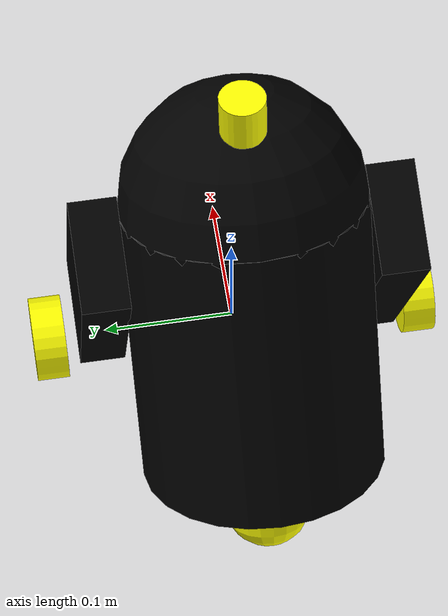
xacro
<?xml version="1.0"?>
<robot xmlns:xacro="http://www.ros.org/wiki/xacro"  name="R6_D9">

    <xacro:arg name="use_ros2_control" default="true"/>
    <xacro:arg name="sim_mode" default="false"/>

    <xacro:include filename="robot_core.xacro" />

    <xacro:if value="$(arg use_ros2_control)">
        <xacro:include filename="ros2_control.xacro" />
    </xacro:if>
    <xacro:unless value="$(arg use_ros2_control)">
        <xacro:include filename="gazebo_control.xacro" />
    </xacro:unless>
    <xacro:include filename="lidar.xacro" />

</robot>

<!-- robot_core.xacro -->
<robot xmlns:xacro="http://www.ros.org/wiki/xacro" >

    <xacro:include filename="inertial_macros.xacro"/>

    <material name="yellow">
        <color rgba="1 1 0 1"/>
    </material>

    <material name="black">
        <color rgba="0 0 0 1"/>
    </material>

    <link name="base_link">

    </link>

    <!-- Chassis Joint -->
    <joint name="chassis_joint" type="fixed">
        <parent link="base_link"/>
        <child link="chassis"/>
        <origin xyz="-0.075 0.0 0.222" rpy="0.0 0.5 0.0"/>
    </joint>

    <!-- Chassis Link -->
    <link name="chassis">
        <visual>
            <origin xyz="0.0 0.0 -0.07"/>
            <geometry>
                <cylinder radius="0.09" length=".222"/>
            </geometry>
            <material name="black"/>
        </visual>

        <collision>
            <origin xyz="0.0 0.0 -0.07"/>
            <geometry>
                <cylinder radius="0.09" length=".222"/>
            </geometry>
        </collision>

        <xacro:inertial_cylinder mass="0.5" length="0.222 " radius="0.09">
            <origin xyz="0.0 0.0 -0.07" rpy="0 0 0"/>
        </xacro:inertial_cylinder>
    </link>

    <!-- Chassis Gazebo Tag -->
    <gazebo reference="chassis">
        <material> Gazebo/Black </material>
    </gazebo>

    <!-- Arms Joint -->
    <joint name="arm_joint" type="fixed">
        <parent link="chassis"/>
        <child link="arms"/>
        <origin xyz="0 0.0 0.0" rpy="0.0 0.0 0.0"/>
    </joint>

    <!-- Arms Link -->
    <link name="arms">
        <!-- Right Arm (Maybe lolw) -->
        <visual>
            <origin xyz="0.07 0.106 -0.055" rpy="0.0 0.7 0.0"/>
            <geometry>
                <box size="0.245 0.035 0.08"/>
            </geometry>
            <material name="black"/>
        </visual>

        <collision>
            <origin xyz="0.07 0.106 -0.055" rpy="0.0 0.7 0.0"/>
            <geometry>
                <box size="0.245 0.035 0.08"/>
            </geometry>
        </collision>

        <xacro:inertial_box mass="0.5" x="0.245" y="0.035" z="0.08">
            <origin xyz="0.07 0.106 -0.055" rpy="0.0 0.7 0.0"/>
        </xacro:inertial_box>

        <!-- Left Arm (Maybe lolw) -->
        <visual>
            <origin xyz="0.07 -0.106 -0.055" rpy="0.0 0.7 0.0"/>
            <geometry>
                <box size="0.245 0.035 0.08"/>
            </geometry>
            <material name="black"/>
        </visual>

        <collision>
            <origin xyz="0.07 -0.106 -0.055" rpy="0.0 0.7 0.0"/>
            <geometry>
                <box size="0.245 0.035 0.08"/>
            </geometry>
        </collision>

        <xacro:inertial_box mass="0.5" x="0.245" y="0.035" z="0.08">
            <origin xyz="0.07 -0.106 -0.055" rpy="0.0 0.7 0.0"/>
        </xacro:inertial_box>

    </link>

    <!-- Gazebo Arms Color -->
    <gazebo reference="arms">
        <material> Gazebo/Black </material>
    </gazebo>

    <!-- Left Wheel Joint -->
    <joint name="left_wheel_joint" type="continuous">
        <parent link="base_link"/>
        <child link="left_wheel"/>
        <origin xyz="0.0 -0.145 0.0" rpy="${pi/2} 0.0 0.0"/>
        <axis xyz="0.0 0.0 1.0"/>
    </joint>

    <!-- Left Wheel link -->
    <link name="left_wheel">
        <visual>
            <geometry>
                <cylinder radius="0.0325" length="0.025"/>
            </geometry>
            <material name="yellow"/>
        </visual>

        <collision>
            <geometry>
                <sphere radius="0.0325"/>
            </geometry>
        </collision>

        <xacro:inertial_cylinder mass="0.1" length="0.025" radius="0.0325">
            <origin xyz="0.0 0.0 0.0" rpy="0 0 0"/>
        </xacro:inertial_cylinder>

    </link>

    <!-- Gazebo Wheel Color -->
    <gazebo reference="left_wheel">
        <material> Gazebo/Yellow </material>
    </gazebo>

    <!-- Right Wheel Joint -->
    <joint name="right_wheel_joint" type="continuous">
        <parent link="base_link"/>
        <child link="right_wheel"/>
        <origin xyz="0.0 0.145 0.0" rpy="-${pi/2} 0.0 0.0"/>
        <axis xyz="0.0 0.0 -1.0"/>
    </joint>

    <!-- Right Wheel Link -->
    <link name="right_wheel">
        <visual>
            <geometry>
                <cylinder radius="0.0325" length="0.025"/>
            </geometry>
            <material name="yellow"/>
        </visual>

        <collision>
            <geometry>
                <sphere radius="0.0325"/>
            </geometry>
        </collision>

        <xacro:inertial_cylinder mass="0.1" length="0.025" radius="0.0325">
            <origin xyz="0.0 0.0 0.0" rpy="0 0 0"/>
        </xacro:inertial_cylinder>

    </link>

    <gazebo reference="right_wheel">
        <material> Gazebo/Yellow </material>
    </gazebo>

    <!-- Caster Wheel Joint -->
    <joint name="caster_wheel_joint" type="fixed">
        <parent link="chassis"/>
        <child link="caster_wheel"/>
        <origin xyz="0.0 0.0 -0.222"/>
    </joint>

    <!-- Caster Wheel Link -->
    <link name="caster_wheel">
        <visual>
            <geometry>
                <sphere radius="0.0325"/>
            </geometry>
            <material name="yellow"/>
        </visual>

        <collision>
            <geometry>
                <sphere radius="0.0325"/>
            </geometry>
        </collision>

        <xacro:inertial_sphere mass="0.1" radius="0.0325">
            <origin xyz="0.0 0.0 0.0" rpy="0 0 0"/>
        </xacro:inertial_sphere>

    </link>

    <gazebo reference="caster_wheel">
        <material> Gazebo/Yellow </material>
        <mu1 value="0.001"/>
        <mu2 value="0.001"/>
    </gazebo>

    <!-- Head Joint -->
    <joint name="head_joint" type="fixed">
        <parent link="chassis"/>
        <child link="head"/>
        <origin xyz="0.0 0.0 0.04"/>
    </joint>

    <!-- Head Link -->
    <link name="head">
        <visual>
            <geometry>
                <sphere radius="0.09"/>
            </geometry>
            <material name="black"/>
        </visual>

        <collision>
            <geometry>
                <sphere radius="0.09"/>
            </geometry>
        </collision>

        <xacro:inertial_sphere mass="0.1" radius="0.09">
            <origin xyz="0.0 0.0 0.04" rpy="0 0 0"/>
        </xacro:inertial_sphere>

    </link>

    <gazebo reference="head">
        <material> Gazebo/Black</material>
    </gazebo>

</robot>

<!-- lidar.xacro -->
<robot xmlns:xacro="http://www.ros.org/wiki/xacro">

    <joint name="lidar_joint" type="fixed">
        <parent link="chassis"/>
        <child link="base_laser"/>
        <origin xyz="-0.045 0.0 0.13" rpy="0.0 -0.35 0.0"/>
    </joint>

    <link name="base_laser">
        <visual>
            <geometry>
                <cylinder radius="0.0165" length="0.036"/>
            </geometry>
            <material name="yellow"/>
        </visual>

        <collision>
            <geometry>
                <cylinder radius="0.0165" length="0.036"/>
            </geometry>
        </collision>

        <xacro:inertial_cylinder mass="0.1" length="0.036" radius="0.0165">
            <origin xyz="-0.045 0.0 0.13" rpy="0 -0.35 0"/>
        </xacro:inertial_cylinder>

    </link>

    <gazebo reference="base_laser">
        <material>Gazebo/Black</material>

        <sensor name="laser" type="ray">
            <pose> 0 0 0 0 0 0 </pose>
            <visualize>false</visualize>
            <update_rate>10</update_rate>
            <ray>
                <scan>
                    <horizontal>
                        <samples>360</samples>
                        <min_angle>-3.14</min_angle>
                        <max_angle>3.14</max_angle>
                    </horizontal>
                </scan>
                <range>
                    <min>0.3</min>
                    <max>12</max>
                </range>
            </ray>
            <plugin name="laser_controller" filename="libgazebo_ros_ray_sensor.so">
                <ros>
                    <argument>~/out:=scan</argument>
                </ros>
                <output_type>sensor_msgs/LaserScan</output_type>
                <frame_name>laser_frame</frame_name>
            </plugin>
        </sensor>
    </gazebo>

</robot>
